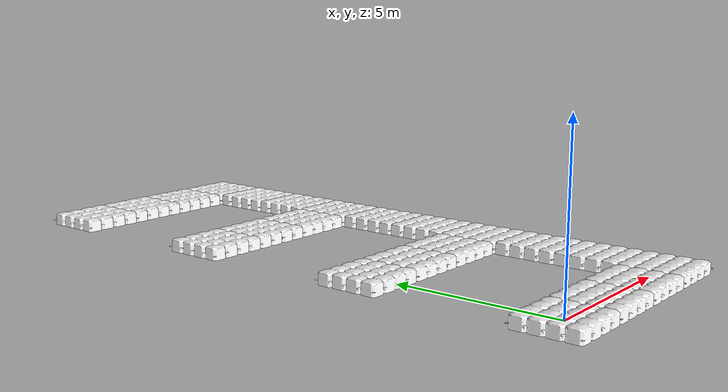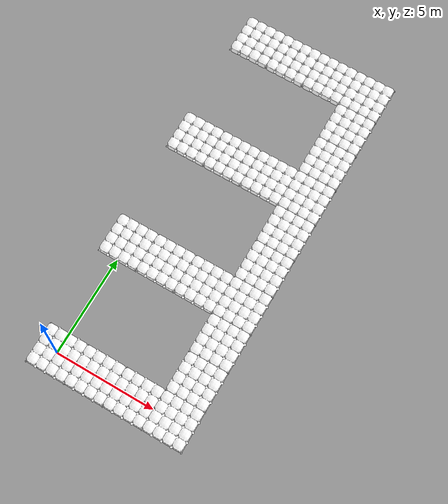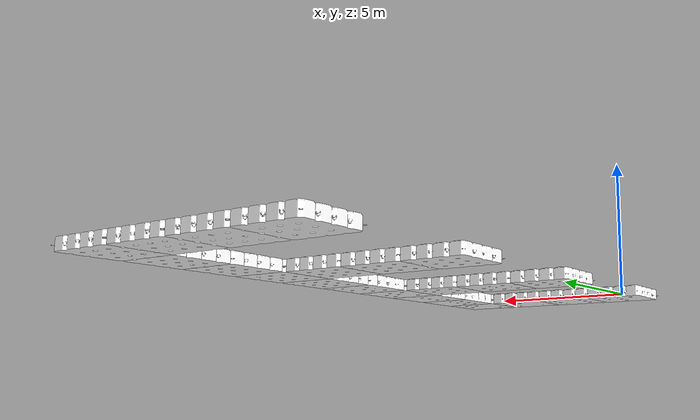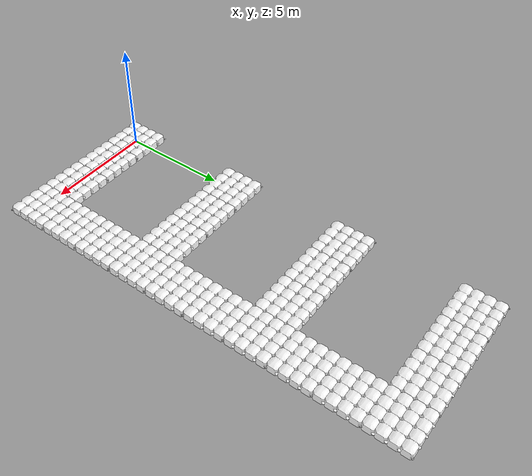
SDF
<?xml version="1.0" ?>
<sdf version="1.6">

  <!-- Important: This file is generated. DO NOT EDIT! -->

  <model name="robotx_dock_2022_base">
    <selfCollide>false</selfCollide>

    <!--
      This is how this dock should look like:

          X  X  X  X          X  X  X  X          X  X  X  X          XXXXXXXXXX
    -->

      <static>true</static>

    <!-- Row 0 -->
    <include>
      <name>dock_block_0_0</name>
      <pose>0 0 0.25 0 0 0</pose>
        <uri>dock_block_4x4</uri>
    </include>
    <include>
      <name>dock_block_0_3</name>
      <pose>0 6 0.25 0 0 0</pose>
        <uri>dock_block_4x4</uri>
    </include>
    <include>
      <name>dock_block_0_6</name>
      <pose>0 12 0.25 0 0 0</pose>
        <uri>dock_block_4x4</uri>
    </include>
    <include>
      <name>dock_block_0_9</name>
      <pose>0 18 0.25 0 0 0</pose>
        <uri>dock_block_4x4</uri>
    </include>

    <!-- Row 1 -->
    <include>
      <name>dock_block_1_0</name>
      <pose>2 0 0.25 0 0 0</pose>
        <uri>dock_block_4x4</uri>
    </include>
    <include>
      <name>dock_block_1_3</name>
      <pose>2 6 0.25 0 0 0</pose>
        <uri>dock_block_4x4</uri>
    </include>
    <include>
      <name>dock_block_1_6</name>
      <pose>2 12 0.25 0 0 0</pose>
        <uri>dock_block_4x4</uri>
    </include>
    <include>
      <name>dock_block_1_9</name>
      <pose>2 18 0.25 0 0 0</pose>
        <uri>dock_block_4x4</uri>
    </include>

    <!-- Row 2 -->
    <include>
      <name>dock_block_2_0</name>
      <pose>4 0 0.25 0 0 0</pose>
        <uri>dock_block_4x4</uri>
    </include>
    <include>
      <name>dock_block_2_3</name>
      <pose>4 6 0.25 0 0 0</pose>
        <uri>dock_block_4x4</uri>
    </include>
    <include>
      <name>dock_block_2_6</name>
      <pose>4 12 0.25 0 0 0</pose>
        <uri>dock_block_4x4</uri>
    </include>
    <include>
      <name>dock_block_2_9</name>
      <pose>4 18 0.25 0 0 0</pose>
        <uri>dock_block_4x4</uri>
    </include>

    <!-- Row 3 -->
    <include>
      <name>dock_block_3_0</name>
      <pose>6 0 0.25 0 0 0</pose>
        <uri>dock_block_4x4</uri>
    </include>
    <include>
      <name>dock_block_3_1</name>
      <pose>6 2 0.25 0 0 0</pose>
        <uri>dock_block_4x4</uri>
    </include>
    <include>
      <name>dock_block_3_2</name>
      <pose>6 4 0.25 0 0 0</pose>
        <uri>dock_block_4x4</uri>
    </include>
    <include>
      <name>dock_block_3_3</name>
      <pose>6 6 0.25 0 0 0</pose>
        <uri>dock_block_4x4</uri>
    </include>
    <include>
      <name>dock_block_3_4</name>
      <pose>6 8 0.25 0 0 0</pose>
        <uri>dock_block_4x4</uri>
    </include>
    <include>
      <name>dock_block_3_5</name>
      <pose>6 10 0.25 0 0 0</pose>
        <uri>dock_block_4x4</uri>
    </include>
    <include>
      <name>dock_block_3_6</name>
      <pose>6 12 0.25 0 0 0</pose>
        <uri>dock_block_4x4</uri>
    </include>
    <include>
      <name>dock_block_3_7</name>
      <pose>6 14 0.25 0 0 0</pose>
        <uri>dock_block_4x4</uri>
    </include>
    <include>
      <name>dock_block_3_8</name>
      <pose>6 16 0.25 0 0 0</pose>
        <uri>dock_block_4x4</uri>
    </include>
    <include>
      <name>dock_block_3_9</name>
      <pose>6 18 0.25 0 0 0</pose>
        <uri>dock_block_4x4</uri>
    </include>

  </model>
</sdf>

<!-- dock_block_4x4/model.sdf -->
<sdf version="1.5">
  <model name="dock_block_4x4">
    <static>true</static>
    <link name="link">
      <collision name="collision">
        <pose>0 0 0 0 0 0</pose>
        <geometry>
          <box>
            <size>2 2 0.4</size>
          </box>
        </geometry>
      </collision>
      <visual name="visual">
        <pose>-0.25 0.25 0.0 0 0 0 </pose>
        <geometry>
          <mesh>
            <uri>mesh/dock_block_4x4.dae</uri>
          </mesh>
        </geometry>
        <material>
          <diffuse>1.0 1.0 1.0</diffuse>
          <specular>1.0 1.0 1.0</specular>
          <pbr>
            <metal>
              <albedo_map>file://dock_block_4x4/mesh/DockCubes_Albedo.png</albedo_map>
              <normal_map>file://dock_block_4x4/mesh/DockCubes_Normal.png</normal_map>
              <roughness_map>file://dock_block_4x4/mesh/DockCubes_Roughness.png</roughness_map>
              <metalness_map>file://dock_block_4x4/mesh/DockCubes_Metalness.png</metalness_map>
            </metal>
          </pbr>
        </material>
      </visual>
    </link>
  </model>
</sdf>
